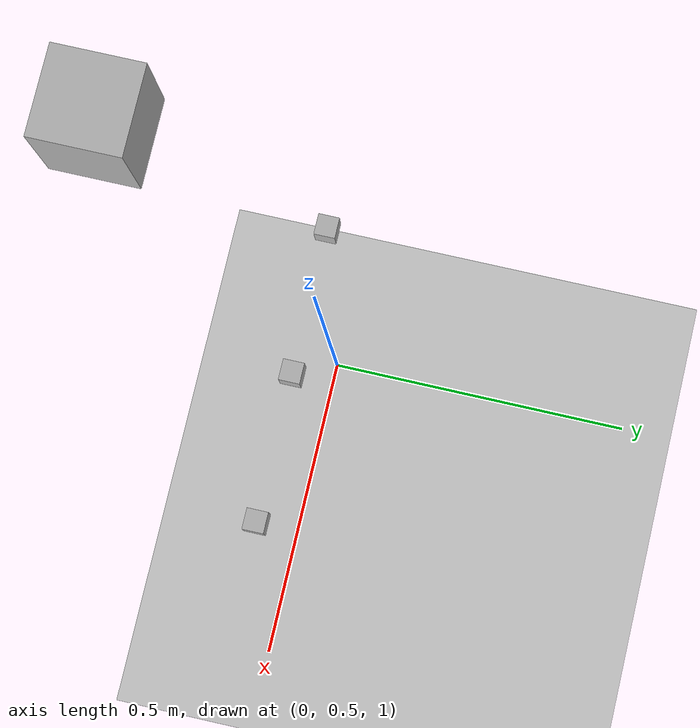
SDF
<?xml version="1.0" ?>
<!-- |    This document was autogenerated by xacro from enme480_ur3e_cubes_xacro.sdf   | -->
<!-- |    EDITING THIS FILE BY HAND IS NOT RECOMMENDED                                 | -->
<sdf version="1.6">
  <world name="enme480_gazebo_cubes">
    <physics type="ode">
      <max_step_size>0.003</max_step_size>
      <real_time_factor>1.0</real_time_factor>
      <real_time_update_rate>1000</real_time_update_rate>
      <gravity>0 0 -9.8</gravity>
    </physics>
    <!-- Plugin for simulating physics -->
    <plugin filename="ignition-gazebo-physics-system" name="gz::sim::systems::Physics">
  </plugin>
    <!-- Plugin for handling user commands -->
    <plugin filename="ignition-gazebo-user-commands-system" name="gz::sim::systems::UserCommands">
  </plugin>
    <!-- Plugin for broadcasting scene updates -->
    <plugin filename="ignition-gazebo-scene-broadcaster-system" name="gz::sim::systems::SceneBroadcaster">
  </plugin>
    <plugin filename="ignition-gazebo-contact-system" name="gz::sim::systems::Contact">
  </plugin>
    <!-- Plugin for sensor handling -->
    <plugin filename="ignition-gazebo-sensors-system" name="gz::sim::systems::Sensors">
      <render_engine>ogre2</render_engine>
    </plugin>
    <gui fullscreen="0">
      <!-- 3D scene -->
      <plugin filename="MinimalScene" name="3D View">
        <ignition-gui>
          <title>3D View</title>
          <property key="showTitleBar" type="bool">false</property>
          <property key="state" type="string">docked</property>
        </ignition-gui>
        <engine>ogre2</engine>
        <scene>scene</scene>
        <ambient_light>0.4 0.4 0.4</ambient_light>
        <background_color>0.8 0.8 0.8</background_color>
        <camera_pose>-6 0 6 0 0.5 0</camera_pose>
      </plugin>
      <!-- Plugins that add functionality to the scene -->
      <plugin filename="EntityContextMenuPlugin" name="Entity context menu">
        <ignition-gui>
          <property key="state" type="string">floating</property>
          <property key="width" type="double">5</property>
          <property key="height" type="double">5</property>
          <property key="showTitleBar" type="bool">false</property>
        </ignition-gui>
      </plugin>
      <plugin filename="GzSceneManager" name="Scene Manager">
        <ignition-gui>
          <property key="resizable" type="bool">false</property>
          <property key="width" type="double">5</property>
          <property key="height" type="double">5</property>
          <property key="state" type="string">floating</property>
          <property key="showTitleBar" type="bool">false</property>
        </ignition-gui>
      </plugin>
      <plugin filename="InteractiveViewControl" name="Interactive view control">
        <ignition-gui>
          <property key="resizable" type="bool">false</property>
          <property key="width" type="double">5</property>
          <property key="height" type="double">5</property>
          <property key="state" type="string">floating</property>
          <property key="showTitleBar" type="bool">false</property>
        </ignition-gui>
      </plugin>
      <plugin filename="CameraTracking" name="Camera Tracking">
        <ignition-gui>
          <property key="resizable" type="bool">false</property>
          <property key="width" type="double">5</property>
          <property key="height" type="double">5</property>
          <property key="state" type="string">floating</property>
          <property key="showTitleBar" type="bool">false</property>
        </ignition-gui>
      </plugin>
      <!-- World control -->
      <plugin filename="WorldControl" name="World control">
        <ignition-gui>
          <title>World control</title>
          <property key="showTitleBar" type="bool">false</property>
          <property key="resizable" type="bool">false</property>
          <property key="height" type="double">72</property>
          <property key="width" type="double">121</property>
          <property key="z" type="double">1</property>
          <property key="state" type="string">floating</property>
          <anchors target="3D View">
            <line own="left" target="left"/>
            <line own="bottom" target="bottom"/>
          </anchors>
        </ignition-gui>
        <play_pause>true</play_pause>
        <step>true</step>
        <start_paused>true</start_paused>
        <use_event>true</use_event>
      </plugin>
      <!-- World statistics -->
      <plugin filename="WorldStats" name="World stats">
        <ignition-gui>
          <title>World stats</title>
          <property key="showTitleBar" type="bool">false</property>
          <property key="resizable" type="bool">false</property>
          <property key="height" type="double">110</property>
          <property key="width" type="double">290</property>
          <property key="z" type="double">1</property>
          <property key="state" type="string">floating</property>
          <anchors target="3D View">
            <line own="right" target="right"/>
            <line own="bottom" target="bottom"/>
          </anchors>
        </ignition-gui>
        <sim_time>true</sim_time>
        <real_time>true</real_time>
        <real_time_factor>true</real_time_factor>
        <iterations>true</iterations>
      </plugin>
      <plugin filename="ImageDisplay" name="Image Display">
        <ignition-gui>
          <property key="state" type="string">docked</property>
        </ignition-gui>
      </plugin>
      <!-- Inspector -->
      <plugin filename="ComponentInspector" name="Component inspector">
        <ignition-gui>
          <property key="state" type="string">docked</property>
        </ignition-gui>
      </plugin>
      <!-- Entity tree -->
      <plugin filename="EntityTree" name="Entity tree">
        <ignition-gui>
          <property key="state" type="string">docked</property>
        </ignition-gui>
      </plugin>
    </gui>
    <light name="sun" type="directional">
      <cast_shadows>false</cast_shadows>
      <pose>0 0 10 0 0 0</pose>
      <diffuse>0.8 0.8 0.8 1</diffuse>
      <specular>0.2 0.2 0.2 1</specular>
      <attenuation>
        <range>1000</range>
        <constant>0.9</constant>
        <linear>0.01</linear>
        <quadratic>0.001</quadratic>
      </attenuation>
      <direction>-0.5 0.1 -0.9</direction>
    </light>
    <model name="ground_plane">
      <static>true</static>
      <link name="link">
        <collision name="collision">
          <geometry>
            <plane>
              <normal>0 0 1</normal>
              <size>100 100</size>
            </plane>
          </geometry>
        </collision>
        <visual name="visual">
          <geometry>
            <plane>
              <normal>0 0 1</normal>
              <size>100 100</size>
            </plane>
          </geometry>
          <material>
            <ambient>0.8 0.8 0.8 1</ambient>
            <diffuse>0.8 0.8 0.8 1</diffuse>
            <specular>0.8 0.8 0.8 1</specular>
          </material>
        </visual>
      </link>
    </model>
    <include>
      <uri>model://cubeAr1</uri>
      <pose>0.28025 0.403 0.8175 0 0 0</pose>
      <pose>0.28025 0.403 0.8175 0 0 0</pose>
    </include>
    <include>
      <uri>model://cubeAr2</uri>
      <pose>0.0 0.403 0.8175 0 0 0</pose>
    </include>
    <include>
      <uri>model://cubeAr3</uri>
      <pose>-0.28025 0.403 0.8175 0 0 0</pose>
    </include>
    <model name="camera">
      <pose>0 0.3224 2.114 0.0 1.57 1.57</pose>
      <static>true</static>
      <link name="camera_link">
        <pose>0.0 0.0 0.0 0 0 0</pose>
        <inertial>
          <mass>0.1</mass>
        </inertial>
        <collision name="camera_collision">
          <geometry>
            <box>
              <size>0.1 0.1 0.1</size>
            </box>
          </geometry>
        </collision>
        <visual name="camera_visual">
          <geometry>
            <box>
              <size>0.1 0.1 0.1</size>
            </box>
          </geometry>
        </visual>
        <sensor name="camera" type="camera">
          <camera>
            <horizontal_fov>1.047</horizontal_fov>
            <image>
              <width>1280</width>
              <height>720</height>
            </image>
            <clip>
              <near>0.1</near>
              <far>100</far>
            </clip>
          </camera>
          <always_on>1</always_on>
          <update_rate>30</update_rate>
          <visualize>true</visualize>
          <topic>camera</topic>
        </sensor>
      </link>
    </model>
  </world>
</sdf>

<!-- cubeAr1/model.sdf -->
<sdf version="1.6">
  <model name="cubeAr1">
    <link name="link_c1">
      <pose>0 0 0 0 0 0</pose>
      <inertial>
        <mass>0.1</mass>
        <inertia>
          <ixx>0.001</ixx>
          <ixy>0</ixy>
          <ixz>0</ixz>
          <iyy>0.001</iyy>
          <iyz>0</iyz>
          <izz>0.001</izz>
        </inertia>
      </inertial>

      <collision name="c1_collision">
        <geometry>
          <box>
            <size>0.04 0.04 0.04</size>
          </box>
        </geometry>
        <surface>
          <friction>
            <ode>
              <mu>0.2</mu>
              <mu2>0.2</mu2>
            </ode>
          </friction>
        </surface>
      </collision>

      <visual name="c1_visual">
        <geometry>
          <mesh>
            <uri>model://cubeAr1/meshes/cubeAr1.obj</uri>
            <scale>0.04 0.04 0.04</scale>
          </mesh>
        </geometry>
      </visual>

    </link>
  </model>
</sdf>

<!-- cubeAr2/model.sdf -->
<sdf version="1.6">
  <model name="cubeAr2">
    <link name="link_c2">
      <pose>0 0 0 0 0 0</pose>
      <inertial>
        <mass>0.1</mass>
        <inertia>
          <ixx>0.001</ixx>
          <ixy>0</ixy>
          <ixz>0</ixz>
          <iyy>0.001</iyy>
          <iyz>0</iyz>
          <izz>0.001</izz>
        </inertia>
      </inertial>

      <collision name="c2_collision">
        <geometry>
          <box>
            <size>0.04 0.04 0.04</size>
          </box>
        </geometry>
        <surface>
          <friction>
            <ode>
              <mu>0.2</mu>
              <mu2>0.2</mu2>
            </ode>
          </friction>
        </surface>
      </collision>

      <visual name="c2_visual">
        <geometry>
          <mesh>
            <uri>model://cubeAr2/meshes/cubeAr2.obj</uri>
            <scale>0.04 0.04 0.04</scale>
          </mesh>
        </geometry>
      </visual>

    </link>
  </model>
</sdf>

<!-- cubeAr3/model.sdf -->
<sdf version="1.6">
  <model name="cubeAr3">
    <link name="link_c3">
      <pose>0 0 0 0 0 0</pose>
      <inertial>
        <mass>0.1</mass>
        <inertia>
          <ixx>0.001</ixx>
          <ixy>0</ixy>
          <ixz>0</ixz>
          <iyy>0.001</iyy>
          <iyz>0</iyz>
          <izz>0.001</izz>
        </inertia>
      </inertial>

      <collision name="c3_collision">
        <geometry>
          <box>
            <size>0.04 0.04 0.04</size>
          </box>
        </geometry>
        <surface>
          <friction>
            <ode>
              <mu>0.2</mu>
              <mu2>0.2</mu2>
            </ode>
          </friction>
        </surface>
      </collision>

      <visual name="c3_visual">
        <geometry>
          <mesh>
            <uri>model://cubeAr3/meshes/cubeAr3.obj</uri>
            <scale>0.04 0.04 0.04</scale>
          </mesh>
        </geometry>
      </visual>

    </link>
  </model>
</sdf>
